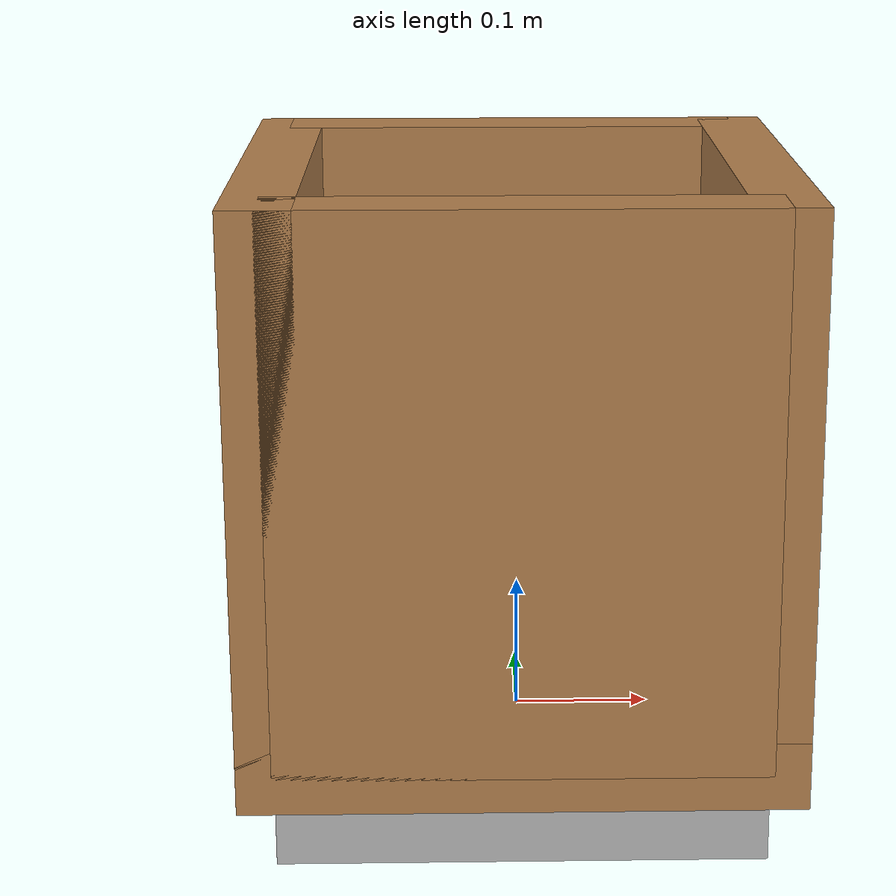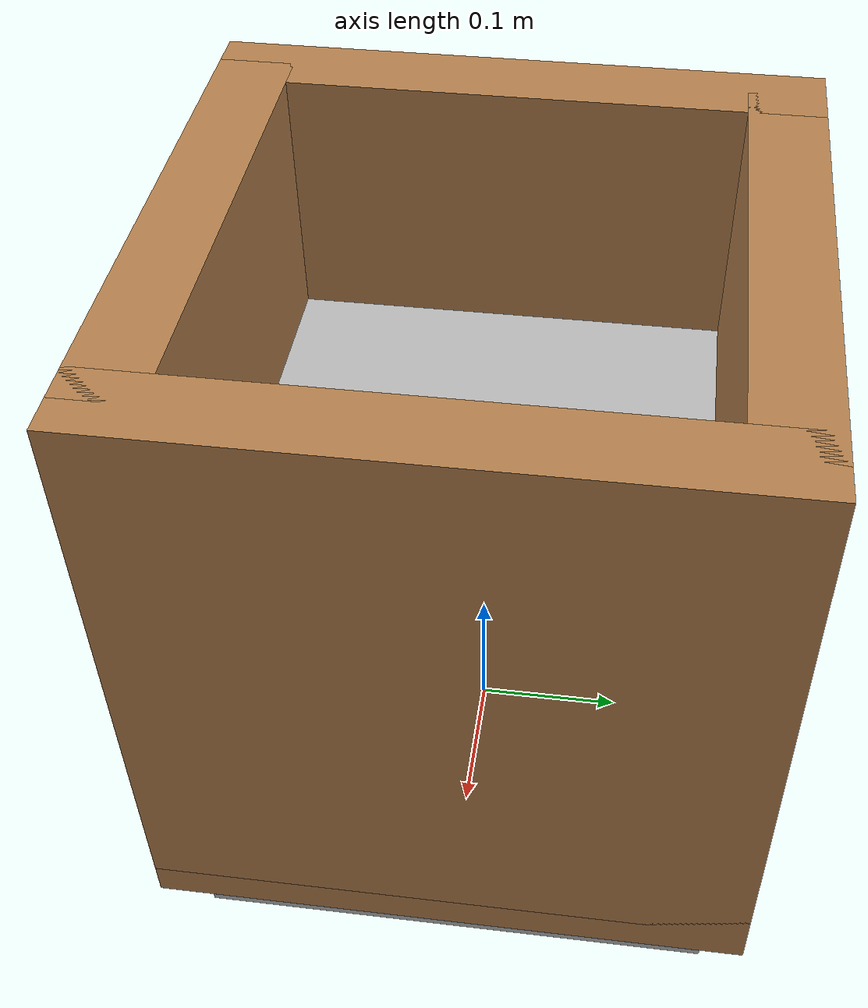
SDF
<?xml version="1.0" ?>
<sdf version="1.6">
  <model name="custom_pot">
    <static>true</static>
    <link name="pot_link">

      <!-- ==================== Visuals ==================== -->

      <!-- Base -->
      <visual name="base_visual">
        <pose>0 0 0.025 0 0 0</pose>
        <geometry>
          <box><size>0.4 0.4 0.05</size></box>
        </geometry>
        <material>
          <script><uri>file://media/materials/scripts/gazebo.material</uri><name>Gazebo/Wood</name></script>
        </material>
      </visual>

      <!-- Side Walls -->
      <!-- Front Wall -->
      <visual name="front_wall_visual">
        <pose>0.175 0 0.225 0 0 0</pose>
        <geometry><box><size>0.05 0.4 0.4</size></box></geometry>
        <material><script><uri>file://media/materials/scripts/gazebo.material</uri><name>Gazebo/Wood</name></script></material>
      </visual>
      <!-- Back Wall -->
      <visual name="back_wall_visual">
        <pose>-0.175 0 0.225 0 0 0</pose>
        <geometry><box><size>0.05 0.4 0.4</size></box></geometry>
        <material><script><uri>file://media/materials/scripts/gazebo.material</uri><name>Gazebo/Wood</name></script></material>
      </visual>
      <!-- Right Wall -->
      <visual name="right_wall_visual">
        <pose>0 -0.175 0.225 0 0 0</pose>
        <geometry><box><size>0.35 0.05 0.4</size></box></geometry>
        <material><script><uri>file://media/materials/scripts/gazebo.material</uri><name>Gazebo/Wood</name></script></material>
      </visual>
      <!-- Left Wall -->
      <visual name="left_wall_visual">
        <pose>0 0.175 0.225 0 0 0</pose>
        <geometry><box><size>0.35 0.05 0.4</size></box></geometry>
        <material><script><uri>file://media/materials/scripts/gazebo.material</uri><name>Gazebo/Wood</name></script></material>
      </visual>

      <!-- Soil -->
      <visual name="soil_visual">
        <pose>0 0 0.1 0 0 0</pose>
        <geometry>
          <box><size>0.35 0.35 0.3</size></box>
        </geometry>
        <material>
          <script><uri>file://media/materials/scripts/gazebo.material</uri><name>Gazebo/Dirt</name></script>
        </material>
      </visual>

      <!-- ==================== Collisions ==================== -->

      <!-- Front Wall Collision -->
      <collision name="front_wall_collision">
        <pose>0.175 0 0.225 0 0 0</pose>
        <geometry><box><size>0.05 0.4 0.45</size></box></geometry>
      </collision>
      <!-- Back Wall Collision -->
      <collision name="back_wall_collision">
        <pose>-0.175 0 0.225 0 0 0</pose>
        <geometry><box><size>0.05 0.4 0.45</size></box></geometry>
      </collision>
      <!-- Right Wall Collision -->
      <collision name="right_wall_collision">
        <pose>0 -0.175 0.225 0 0 0</pose>
        <geometry><box><size>0.4 0.05 0.45</size></box></geometry>
      </collision>
      <!-- Left Wall Collision -->
      <collision name="left_wall_collision">
        <pose>0 0.175 0.225 0 0 0</pose>
        <geometry><box><size>0.4 0.05 0.45</size></box></geometry>
      </collision>

    </link>
  </model>
</sdf>
